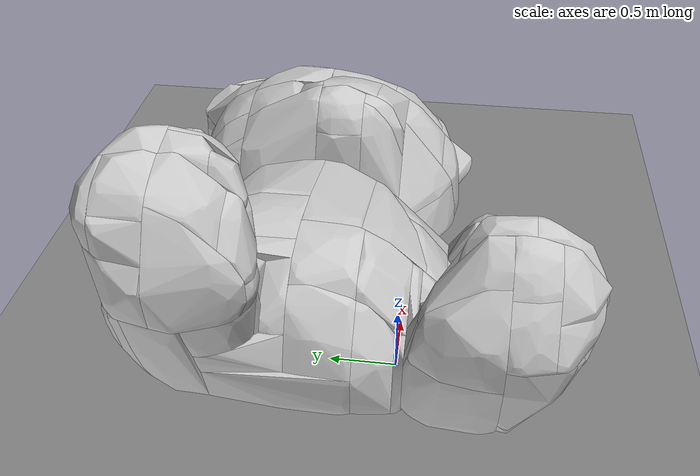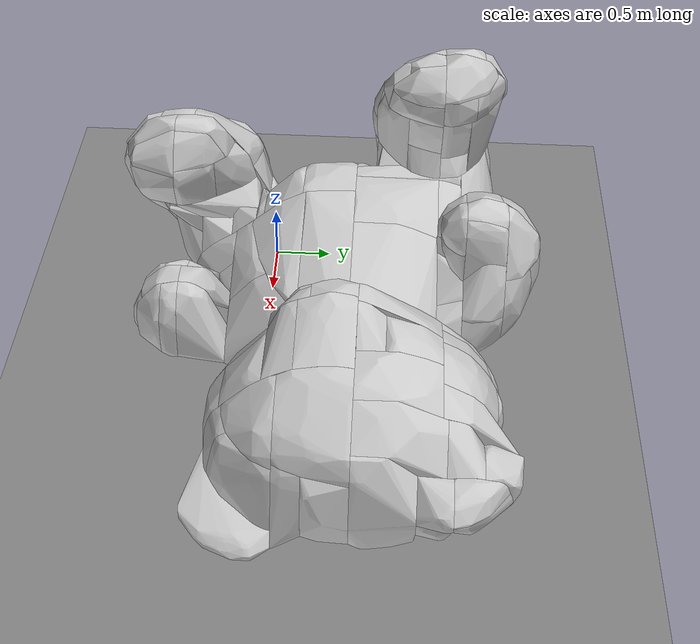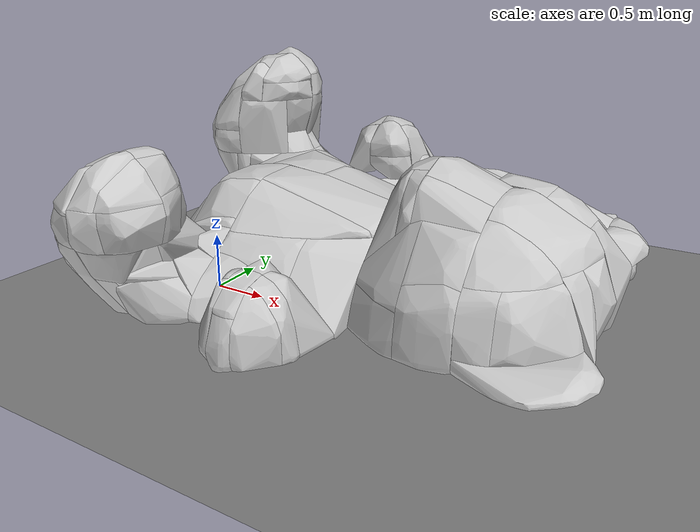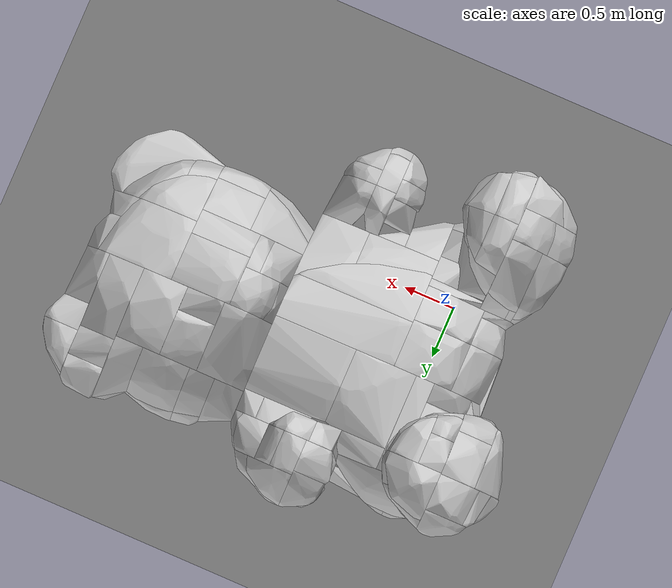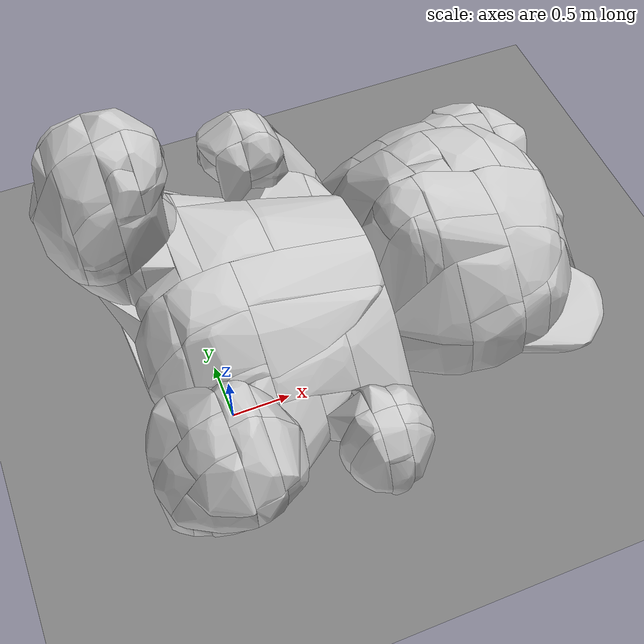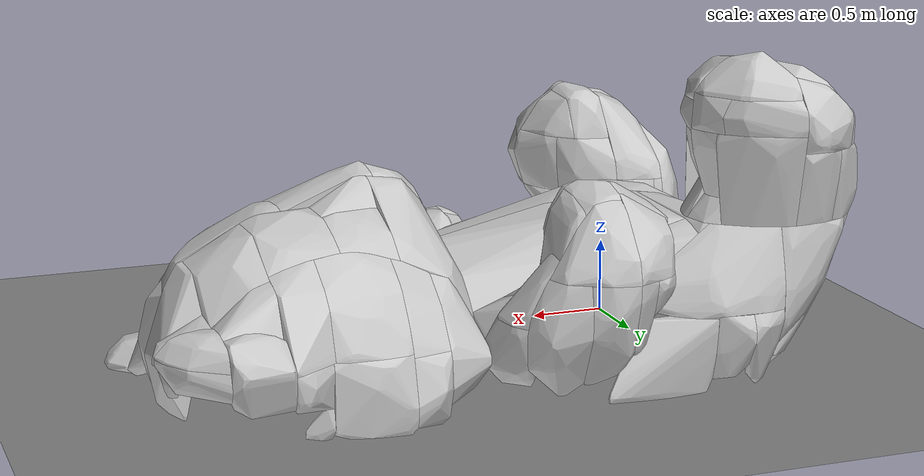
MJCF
<mujoco>
    <extension>
    </extension>
    <asset>
        <texture type="skybox" builtin="gradient" rgb1=".3 .5 .7" rgb2="0 0 0" width="32" height="512"/>
        <mesh file="../mesh/bear/convex_0.obj" name="convex0"     scale="10 10 10"/>
        <mesh file="../mesh/bear/convex_1.obj" name="convex1"     scale="10 10 10"/>
        <mesh file="../mesh/bear/convex_2.obj" name="convex2"     scale="10 10 10"/>
        <mesh file="../mesh/bear/convex_3.obj" name="convex3"     scale="10 10 10"/>
        <mesh file="../mesh/bear/convex_4.obj" name="convex4"     scale="10 10 10"/>
        <mesh file="../mesh/bear/convex_5.obj" name="convex5"     scale="10 10 10"/>
        <mesh file="../mesh/bear/convex_6.obj" name="convex6"     scale="10 10 10"/>
        <mesh file="../mesh/bear/convex_7.obj" name="convex7"     scale="10 10 10"/>
        <mesh file="../mesh/bear/convex_8.obj" name="convex8"     scale="10 10 10"/>
        <mesh file="../mesh/bear/convex_9.obj" name="convex9"     scale="10 10 10"/>
        <mesh file="../mesh/bear/convex_10.obj" name="convex10"   scale="10 10 10"/>
        <mesh file="../mesh/bear/convex_11.obj" name="convex11"   scale="10 10 10"/>
        <mesh file="../mesh/bear/convex_12.obj" name="convex12"   scale="10 10 10"/>
        <mesh file="../mesh/bear/convex_13.obj" name="convex13"   scale="10 10 10"/>
        <mesh file="../mesh/bear/convex_14.obj" name="convex14"   scale="10 10 10"/>
        <mesh file="../mesh/bear/convex_15.obj" name="convex15"   scale="10 10 10"/>
        <mesh file="../mesh/bear/convex_16.obj" name="convex16"   scale="10 10 10"/>
        <mesh file="../mesh/bear/convex_17.obj" name="convex17"   scale="10 10 10"/>
        <mesh file="../mesh/bear/convex_18.obj" name="convex18"   scale="10 10 10"/>
        <mesh file="../mesh/bear/convex_19.obj" name="convex19"   scale="10 10 10"/>
        <mesh file="../mesh/bear/convex_20.obj" name="convex20"   scale="10 10 10"/>
        <mesh file="../mesh/bear/convex_21.obj" name="convex21"   scale="10 10 10"/>
        <mesh file="../mesh/bear/convex_22.obj" name="convex22"   scale="10 10 10"/>
        <mesh file="../mesh/bear/convex_23.obj" name="convex23"   scale="10 10 10"/>
        <mesh file="../mesh/bear/convex_24.obj" name="convex24"   scale="10 10 10"/>
        <mesh file="../mesh/bear/convex_25.obj" name="convex25"   scale="10 10 10"/>
        <mesh file="../mesh/bear/convex_26.obj" name="convex26"   scale="10 10 10"/>
        <mesh file="../mesh/bear/convex_27.obj" name="convex27"   scale="10 10 10"/>
        <mesh file="../mesh/bear/convex_28.obj" name="convex28"   scale="10 10 10"/>
        <mesh file="../mesh/bear/convex_29.obj" name="convex29"   scale="10 10 10"/>
        <mesh file="../mesh/bear/convex_30.obj" name="convex30"   scale="10 10 10"/>
        <mesh file="../mesh/bear/convex_31.obj" name="convex31"   scale="10 10 10"/>
        <mesh file="../mesh/bear/convex_32.obj" name="convex32"   scale="10 10 10"/>
        <mesh file="../mesh/bear/convex_33.obj" name="convex33"   scale="10 10 10"/>
        <mesh file="../mesh/bear/convex_34.obj" name="convex34"   scale="10 10 10"/>
        <mesh file="../mesh/bear/convex_35.obj" name="convex35"   scale="10 10 10"/>
        <mesh file="../mesh/bear/convex_36.obj" name="convex36"   scale="10 10 10"/>
        <mesh file="../mesh/bear/convex_37.obj" name="convex37"   scale="10 10 10"/>
        <mesh file="../mesh/bear/convex_38.obj" name="convex38"   scale="10 10 10"/>
        <mesh file="../mesh/bear/convex_39.obj" name="convex39"   scale="10 10 10"/>
        <mesh file="../mesh/bear/convex_40.obj" name="convex40"   scale="10 10 10"/>
        <mesh file="../mesh/bear/convex_41.obj" name="convex41"   scale="10 10 10"/>
        <mesh file="../mesh/bear/convex_42.obj" name="convex42"   scale="10 10 10"/>
        <mesh file="../mesh/bear/convex_43.obj" name="convex43"   scale="10 10 10"/>
        <mesh file="../mesh/bear/convex_44.obj" name="convex44"   scale="10 10 10"/>
        <mesh file="../mesh/bear/convex_45.obj" name="convex45"   scale="10 10 10"/>
        <mesh file="../mesh/bear/convex_46.obj" name="convex46"   scale="10 10 10"/>
        <mesh file="../mesh/bear/convex_47.obj" name="convex47"   scale="10 10 10"/>
        <mesh file="../mesh/bear/convex_48.obj" name="convex48"   scale="10 10 10"/>
        <mesh file="../mesh/bear/convex_49.obj" name="convex49"   scale="10 10 10"/>
        <mesh file="../mesh/bear/convex_50.obj" name="convex50"   scale="10 10 10"/>
        <mesh file="../mesh/bear/convex_51.obj" name="convex51"   scale="10 10 10"/>
        <mesh file="../mesh/bear/convex_52.obj" name="convex52"   scale="10 10 10"/>
        <mesh file="../mesh/bear/convex_53.obj" name="convex53"   scale="10 10 10"/>
        <mesh file="../mesh/bear/convex_54.obj" name="convex54"   scale="10 10 10"/>
        <mesh file="../mesh/bear/convex_55.obj" name="convex55"   scale="10 10 10"/>
        <mesh file="../mesh/bear/convex_56.obj" name="convex56"   scale="10 10 10"/>
        <mesh file="../mesh/bear/convex_57.obj" name="convex57"   scale="10 10 10"/>
        <mesh file="../mesh/bear/convex_58.obj" name="convex58"   scale="10 10 10"/>
        <mesh file="../mesh/bear/convex_59.obj" name="convex59"   scale="10 10 10"/>
        <mesh file="../mesh/bear/convex_60.obj" name="convex60"   scale="10 10 10"/>
        <mesh file="../mesh/bear/convex_61.obj" name="convex61"   scale="10 10 10"/>
        <mesh file="../mesh/bear/convex_62.obj" name="convex62"   scale="10 10 10"/>
        <mesh file="../mesh/bear/convex_63.obj" name="convex63"   scale="10 10 10"/>
        <mesh file="../mesh/bear/convex_64.obj" name="convex64"   scale="10 10 10"/>
        <mesh file="../mesh/bear/convex_65.obj" name="convex65"   scale="10 10 10"/>
        <mesh file="../mesh/bear/convex_66.obj" name="convex66"   scale="10 10 10"/>
        <mesh file="../mesh/bear/convex_67.obj" name="convex67"   scale="10 10 10"/>
        <mesh file="../mesh/bear/convex_68.obj" name="convex68"   scale="10 10 10"/>
        <mesh file="../mesh/bear/convex_69.obj" name="convex69"   scale="10 10 10"/>
        <mesh file="../mesh/bear/convex_70.obj" name="convex70"   scale="10 10 10"/>
        <mesh file="../mesh/bear/convex_71.obj" name="convex71"   scale="10 10 10"/>
        <mesh file="../mesh/bear/convex_72.obj" name="convex72"   scale="10 10 10"/>
        <mesh file="../mesh/bear/convex_73.obj" name="convex73"   scale="10 10 10"/>
        <mesh file="../mesh/bear/convex_74.obj" name="convex74"   scale="10 10 10"/>
        <mesh file="../mesh/bear/convex_75.obj" name="convex75"   scale="10 10 10"/>
        <mesh file="../mesh/bear/convex_76.obj" name="convex76"   scale="10 10 10"/>
        <mesh file="../mesh/bear/convex_77.obj" name="convex77"   scale="10 10 10"/>
        <mesh file="../mesh/bear/convex_78.obj" name="convex78"   scale="10 10 10"/>
        <mesh file="../mesh/bear/convex_79.obj" name="convex79"   scale="10 10 10"/>
        <mesh file="../mesh/bear/convex_80.obj" name="convex80"   scale="10 10 10"/>
        <mesh file="../mesh/bear/convex_81.obj" name="convex81"   scale="10 10 10"/>
        <mesh file="../mesh/bear/convex_82.obj" name="convex82"   scale="10 10 10"/>
        <mesh file="../mesh/bear/convex_83.obj" name="convex83"   scale="10 10 10"/>
        <mesh file="../mesh/bear/convex_84.obj" name="convex84"   scale="10 10 10"/>
        <mesh file="../mesh/bear/convex_85.obj" name="convex85"   scale="10 10 10"/>
        <mesh file="../mesh/bear/convex_86.obj" name="convex86"   scale="10 10 10"/>
        <mesh file="../mesh/bear/convex_87.obj" name="convex87"   scale="10 10 10"/>
        <mesh file="../mesh/bear/convex_88.obj" name="convex88"   scale="10 10 10"/>
        <mesh file="../mesh/bear/convex_89.obj" name="convex89"   scale="10 10 10"/>
        <mesh file="../mesh/bear/convex_90.obj" name="convex90"   scale="10 10 10"/>
        <mesh file="../mesh/bear/convex_91.obj" name="convex91"   scale="10 10 10"/>
        <mesh file="../mesh/bear/convex_92.obj" name="convex92"   scale="10 10 10"/>
        <mesh file="../mesh/bear/convex_93.obj" name="convex93"   scale="10 10 10"/>
        <mesh file="../mesh/bear/convex_94.obj" name="convex94"   scale="10 10 10"/>
        <mesh file="../mesh/bear/convex_95.obj" name="convex95"   scale="10 10 10"/>
        <mesh file="../mesh/bear/convex_96.obj" name="convex96"   scale="10 10 10"/>
        <mesh file="../mesh/bear/convex_97.obj" name="convex97"   scale="10 10 10"/>
        <mesh file="../mesh/bear/convex_98.obj" name="convex98"   scale="10 10 10"/>
        <mesh file="../mesh/bear/convex_99.obj" name="convex99"   scale="10 10 10"/>
        <mesh file="../mesh/bear/convex_100.obj" name="convex100" scale="10 10 10"/>
        <mesh file="../mesh/bear/convex_101.obj" name="convex101" scale="10 10 10"/>
        <mesh file="../mesh/bear/convex_102.obj" name="convex102" scale="10 10 10"/>
        <mesh file="../mesh/bear/convex_103.obj" name="convex103" scale="10 10 10"/>
        <mesh file="../mesh/bear/convex_104.obj" name="convex104" scale="10 10 10"/>
        <mesh file="../mesh/bear/convex_105.obj" name="convex105" scale="10 10 10"/>
        <mesh file="../mesh/bear/convex_106.obj" name="convex106" scale="10 10 10"/>
        <mesh file="../mesh/bear/convex_107.obj" name="convex107" scale="10 10 10"/>
        <mesh file="../mesh/bear/convex_108.obj" name="convex108" scale="10 10 10"/>
        <mesh file="../mesh/bear/convex_109.obj" name="convex109" scale="10 10 10"/>
        <mesh file="../mesh/bear/convex_110.obj" name="convex110" scale="10 10 10"/>
        <mesh file="../mesh/bear/convex_111.obj" name="convex111" scale="10 10 10"/>
        <mesh file="../mesh/bear/convex_112.obj" name="convex112" scale="10 10 10"/>
        <mesh file="../mesh/bear/convex_113.obj" name="convex113" scale="10 10 10"/>
        <mesh file="../mesh/bear/convex_114.obj" name="convex114" scale="10 10 10"/>
        <mesh file="../mesh/bear/convex_115.obj" name="convex115" scale="10 10 10"/>
        <mesh file="../mesh/bear/convex_116.obj" name="convex116" scale="10 10 10"/>
        <mesh file="../mesh/bear/convex_117.obj" name="convex117" scale="10 10 10"/>
        <mesh file="../mesh/bear/convex_118.obj" name="convex118" scale="10 10 10"/>
        <mesh file="../mesh/bear/convex_119.obj" name="convex119" scale="10 10 10"/>
        <mesh file="../mesh/bear/convex_120.obj" name="convex120" scale="10 10 10"/>
        <mesh file="../mesh/bear/convex_121.obj" name="convex121" scale="10 10 10"/>
        <mesh file="../mesh/bear/convex_122.obj" name="convex122" scale="10 10 10"/>
        <mesh file="../mesh/bear/convex_123.obj" name="convex123" scale="10 10 10"/>
        <mesh file="../mesh/bear/convex_124.obj" name="convex124" scale="10 10 10"/>
        <mesh file="../mesh/bear/convex_125.obj" name="convex125" scale="10 10 10"/>
        <mesh file="../mesh/bear/convex_126.obj" name="convex126" scale="10 10 10"/>
        <mesh file="../mesh/bear/convex_127.obj" name="convex127" scale="10 10 10"/>
        <mesh file="../mesh/bear/convex_128.obj" name="convex128" scale="10 10 10"/>
        <mesh file="../mesh/bear/convex_129.obj" name="convex129" scale="10 10 10"/>
        <mesh file="../mesh/bear/convex_130.obj" name="convex130" scale="10 10 10"/>
        <mesh file="../mesh/bear/convex_131.obj" name="convex131" scale="10 10 10"/>
        <mesh file="../mesh/bear/convex_132.obj" name="convex132" scale="10 10 10"/>
        <mesh file="../mesh/bear/convex_133.obj" name="convex133" scale="10 10 10"/>
        <mesh file="../mesh/bear/convex_134.obj" name="convex134" scale="10 10 10"/>
        <mesh file="../mesh/bear/convex_135.obj" name="convex135" scale="10 10 10"/>
        <mesh file="../mesh/bear/convex_136.obj" name="convex136" scale="10 10 10"/>
        <mesh file="../mesh/bear/convex_137.obj" name="convex137" scale="10 10 10"/>
        <mesh file="../mesh/bear/convex_138.obj" name="convex138" scale="10 10 10"/>
        <mesh file="../mesh/bear/convex_139.obj" name="convex139" scale="10 10 10"/>
        <material name="mat_bear" rgba="0.8 0.8 0.8 1"/>
    </asset>
    <worldbody>
        <light name="sunlight" pos="0 0 10" dir="0 0 -1" diffuse="1 1 0.9" specular="0.1 0.1 0.1" directional="true" castshadow="true"/>
        <geom name="floor" type="plane" size="0 0 .1"/>
        <body name="mesh_bear" pos="0 0 5" euler="90 0 0">
            <geom type="mesh" mesh="convex0" material="mat_bear"/>
            <geom type="mesh" mesh="convex1" material="mat_bear"/>
            <geom type="mesh" mesh="convex2" material="mat_bear"/>
            <geom type="mesh" mesh="convex3" material="mat_bear"/>
            <geom type="mesh" mesh="convex4" material="mat_bear"/>
            <geom type="mesh" mesh="convex5" material="mat_bear"/>
            <geom type="mesh" mesh="convex6" material="mat_bear"/>
            <geom type="mesh" mesh="convex7" material="mat_bear"/>
            <geom type="mesh" mesh="convex8" material="mat_bear"/>
            <geom type="mesh" mesh="convex9" material="mat_bear"/>
            <geom type="mesh" mesh="convex10" material="mat_bear"/>
            <geom type="mesh" mesh="convex11" material="mat_bear"/>
            <geom type="mesh" mesh="convex12" material="mat_bear"/>
            <geom type="mesh" mesh="convex13" material="mat_bear"/>
            <geom type="mesh" mesh="convex14" material="mat_bear"/>
            <geom type="mesh" mesh="convex15" material="mat_bear"/>
            <geom type="mesh" mesh="convex16" material="mat_bear"/>
            <geom type="mesh" mesh="convex17" material="mat_bear"/>
            <geom type="mesh" mesh="convex18" material="mat_bear"/>
            <geom type="mesh" mesh="convex19" material="mat_bear"/>
            <geom type="mesh" mesh="convex20" material="mat_bear"/>
            <geom type="mesh" mesh="convex21" material="mat_bear"/>
            <geom type="mesh" mesh="convex22" material="mat_bear"/>
            <geom type="mesh" mesh="convex23" material="mat_bear"/>
            <geom type="mesh" mesh="convex24" material="mat_bear"/>
            <geom type="mesh" mesh="convex25" material="mat_bear"/>
            <geom type="mesh" mesh="convex26" material="mat_bear"/>
            <geom type="mesh" mesh="convex27" material="mat_bear"/>
            <geom type="mesh" mesh="convex28" material="mat_bear"/>
            <geom type="mesh" mesh="convex29" material="mat_bear"/>
            <geom type="mesh" mesh="convex30" material="mat_bear"/>
            <geom type="mesh" mesh="convex31" material="mat_bear"/>
            <geom type="mesh" mesh="convex32" material="mat_bear"/>
            <geom type="mesh" mesh="convex33" material="mat_bear"/>
            <geom type="mesh" mesh="convex34" material="mat_bear"/>
            <geom type="mesh" mesh="convex35" material="mat_bear"/>
            <geom type="mesh" mesh="convex36" material="mat_bear"/>
            <geom type="mesh" mesh="convex37" material="mat_bear"/>
            <geom type="mesh" mesh="convex38" material="mat_bear"/>
            <geom type="mesh" mesh="convex39" material="mat_bear"/>
            <geom type="mesh" mesh="convex40" material="mat_bear"/>
            <geom type="mesh" mesh="convex41" material="mat_bear"/>
            <geom type="mesh" mesh="convex42" material="mat_bear"/>
            <geom type="mesh" mesh="convex43" material="mat_bear"/>
            <geom type="mesh" mesh="convex44" material="mat_bear"/>
            <geom type="mesh" mesh="convex45" material="mat_bear"/>
            <geom type="mesh" mesh="convex46" material="mat_bear"/>
            <geom type="mesh" mesh="convex47" material="mat_bear"/>
            <geom type="mesh" mesh="convex48" material="mat_bear"/>
            <geom type="mesh" mesh="convex49" material="mat_bear"/>
            <geom type="mesh" mesh="convex50" material="mat_bear"/>
            <geom type="mesh" mesh="convex51" material="mat_bear"/>
            <geom type="mesh" mesh="convex52" material="mat_bear"/>
            <geom type="mesh" mesh="convex53" material="mat_bear"/>
            <geom type="mesh" mesh="convex54" material="mat_bear"/>
            <geom type="mesh" mesh="convex55" material="mat_bear"/>
            <geom type="mesh" mesh="convex56" material="mat_bear"/>
            <geom type="mesh" mesh="convex57" material="mat_bear"/>
            <geom type="mesh" mesh="convex58" material="mat_bear"/>
            <geom type="mesh" mesh="convex59" material="mat_bear"/>
            <geom type="mesh" mesh="convex60" material="mat_bear"/>
            <geom type="mesh" mesh="convex61" material="mat_bear"/>
            <geom type="mesh" mesh="convex62" material="mat_bear"/>
            <geom type="mesh" mesh="convex63" material="mat_bear"/>
            <geom type="mesh" mesh="convex64" material="mat_bear"/>
            <geom type="mesh" mesh="convex65" material="mat_bear"/>
            <geom type="mesh" mesh="convex66" material="mat_bear"/>
            <geom type="mesh" mesh="convex67" material="mat_bear"/>
            <geom type="mesh" mesh="convex68" material="mat_bear"/>
            <geom type="mesh" mesh="convex69" material="mat_bear"/>
            <geom type="mesh" mesh="convex70" material="mat_bear"/>
            <geom type="mesh" mesh="convex71" material="mat_bear"/>
            <geom type="mesh" mesh="convex72" material="mat_bear"/>
            <geom type="mesh" mesh="convex73" material="mat_bear"/>
            <geom type="mesh" mesh="convex74" material="mat_bear"/>
            <geom type="mesh" mesh="convex75" material="mat_bear"/>
            <geom type="mesh" mesh="convex76" material="mat_bear"/>
            <geom type="mesh" mesh="convex77" material="mat_bear"/>
            <geom type="mesh" mesh="convex78" material="mat_bear"/>
            <geom type="mesh" mesh="convex79" material="mat_bear"/>
            <geom type="mesh" mesh="convex80" material="mat_bear"/>
            <geom type="mesh" mesh="convex81" material="mat_bear"/>
            <geom type="mesh" mesh="convex82" material="mat_bear"/>
            <geom type="mesh" mesh="convex83" material="mat_bear"/>
            <geom type="mesh" mesh="convex84" material="mat_bear"/>
            <geom type="mesh" mesh="convex85" material="mat_bear"/>
            <geom type="mesh" mesh="convex86" material="mat_bear"/>
            <geom type="mesh" mesh="convex87" material="mat_bear"/>
            <geom type="mesh" mesh="convex88" material="mat_bear"/>
            <geom type="mesh" mesh="convex89" material="mat_bear"/>
            <geom type="mesh" mesh="convex90" material="mat_bear"/>
            <geom type="mesh" mesh="convex91" material="mat_bear"/>
            <geom type="mesh" mesh="convex92" material="mat_bear"/>
            <geom type="mesh" mesh="convex93" material="mat_bear"/>
            <geom type="mesh" mesh="convex94" material="mat_bear"/>
            <geom type="mesh" mesh="convex95" material="mat_bear"/>
            <geom type="mesh" mesh="convex96" material="mat_bear"/>
            <geom type="mesh" mesh="convex97" material="mat_bear"/>
            <geom type="mesh" mesh="convex98" material="mat_bear"/>
            <geom type="mesh" mesh="convex99" material="mat_bear"/>
            <geom type="mesh" mesh="convex100" material="mat_bear"/>
            <geom type="mesh" mesh="convex101" material="mat_bear"/>
            <geom type="mesh" mesh="convex102" material="mat_bear"/>
            <geom type="mesh" mesh="convex103" material="mat_bear"/>
            <geom type="mesh" mesh="convex104" material="mat_bear"/>
            <geom type="mesh" mesh="convex105" material="mat_bear"/>
            <geom type="mesh" mesh="convex106" material="mat_bear"/>
            <geom type="mesh" mesh="convex107" material="mat_bear"/>
            <geom type="mesh" mesh="convex108" material="mat_bear"/>
            <geom type="mesh" mesh="convex109" material="mat_bear"/>
            <geom type="mesh" mesh="convex110" material="mat_bear"/>
            <geom type="mesh" mesh="convex111" material="mat_bear"/>
            <geom type="mesh" mesh="convex112" material="mat_bear"/>
            <geom type="mesh" mesh="convex113" material="mat_bear"/>
            <geom type="mesh" mesh="convex114" material="mat_bear"/>
            <geom type="mesh" mesh="convex115" material="mat_bear"/>
            <geom type="mesh" mesh="convex116" material="mat_bear"/>
            <geom type="mesh" mesh="convex117" material="mat_bear"/>
            <geom type="mesh" mesh="convex118" material="mat_bear"/>
            <geom type="mesh" mesh="convex119" material="mat_bear"/>
            <geom type="mesh" mesh="convex120" material="mat_bear"/>
            <geom type="mesh" mesh="convex121" material="mat_bear"/>
            <geom type="mesh" mesh="convex122" material="mat_bear"/>
            <geom type="mesh" mesh="convex123" material="mat_bear"/>
            <geom type="mesh" mesh="convex124" material="mat_bear"/>
            <geom type="mesh" mesh="convex125" material="mat_bear"/>
            <geom type="mesh" mesh="convex126" material="mat_bear"/>
            <geom type="mesh" mesh="convex127" material="mat_bear"/>
            <geom type="mesh" mesh="convex128" material="mat_bear"/>
            <geom type="mesh" mesh="convex129" material="mat_bear"/>
            <geom type="mesh" mesh="convex130" material="mat_bear"/>
            <geom type="mesh" mesh="convex131" material="mat_bear"/>
            <geom type="mesh" mesh="convex132" material="mat_bear"/>
            <geom type="mesh" mesh="convex133" material="mat_bear"/>
            <geom type="mesh" mesh="convex134" material="mat_bear"/>
            <geom type="mesh" mesh="convex135" material="mat_bear"/>
            <geom type="mesh" mesh="convex136" material="mat_bear"/>
            <geom type="mesh" mesh="convex137" material="mat_bear"/>
            <geom type="mesh" mesh="convex138" material="mat_bear"/>
            <geom type="mesh" mesh="convex139" material="mat_bear"/>
        </body>
    </worldbody>
</mujoco>
